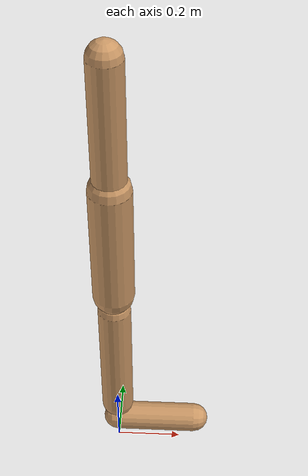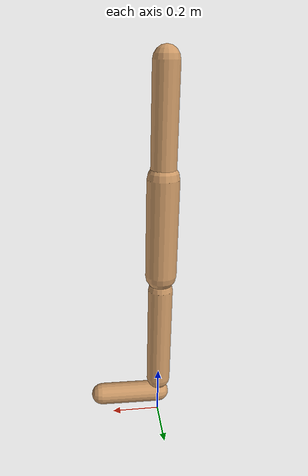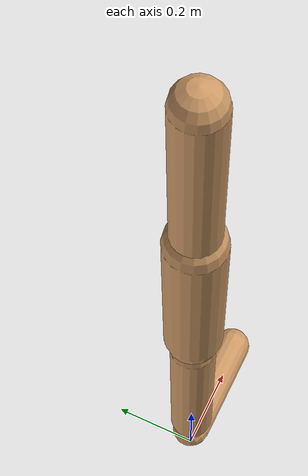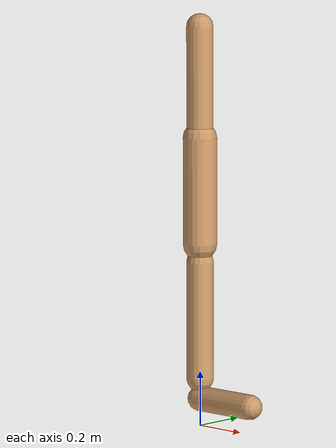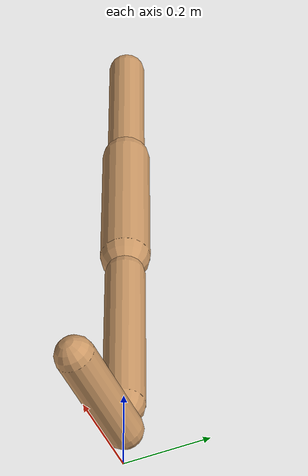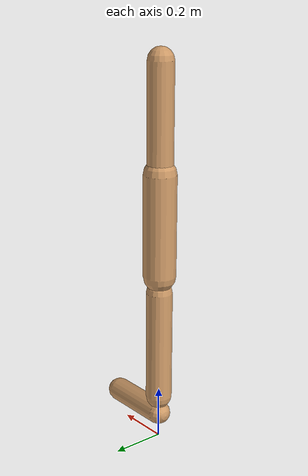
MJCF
<mujoco model="walker2d">
  <compiler angle="degree" coordinate="global" inertiafromgeom="true" />
  <default>
    <joint armature="0.01" damping=".1" limited="true" />
    <geom conaffinity="0" condim="3" contype="1" density="1000" friction="0.8 .1 .1" rgba="0.8 0.6 .4 1" />
  </default>
  <option integrator="RK4" timestep="0.002" />
  <worldbody>

    <body name="torso" pos="0 0 -0.1407101730280846">
      <joint armature="0" axis="1 0 0" damping="0" limited="false" name="ignorex" pos="0 0 0" stiffness="0" type="slide" />
      <joint armature="0" axis="0 0 1" damping="0" limited="false" name="ignorez" pos="0 0 0" ref="1.25" stiffness="0" type="slide" />
      <joint armature="0" axis="0 1 0" damping="0" limited="false" name="ignorey" pos="0 0 0" stiffness="0" type="hinge" />
      <geom fromto="0 0 1.45 0 0 1.05" name="torso_geom" size="0.048473413602160766" type="capsule" />
      <body name="thigh">
        <joint axis="0 -1 0" name="thigh_joint" pos="0 0 1.05" range="-150 0" type="hinge" />
        <geom fromto="0.0 0.0 1.05 0.0 0.0 0.6666521872238296" name="thigh_geom" size="0.06172441525191297" type="capsule" />
        <body name="leg" pos="0.0 0.0 0.0666521872238296">
          <joint axis="0 -1 0" name="leg_joint" pos="0 0 0.6" range="-150 0" type="hinge" />
          <geom fromto="0.0 0.0 0.6 0.0 0.0 0.17405798580425508" name="leg_geom" size="0.04937953220153037" type="capsule" />
          <body name="foot" pos="0.0 0.0 0.07405798580425507">
            <joint axis="0 -1 0" name="foot_joint" pos="0 0 0.1" range="-45 45" type="hinge" />
            <geom fromto="-0.0 0.0 0.09999999999999999 0.2461499404091681 0.0 0.09999999999999999" name="foot_geom" size="0.045213409400663034" type="capsule" />
          </body>
        </body>
      </body>

      <body name="thigh_left">
        <joint axis="0 -1 0" name="thigh_left_joint" pos="0 0 1.05" range="-150 0" type="hinge" />
        <geom fromto="0.0 0.0 1.05 0.0 0.0 0.6666521872238296" name="thigh_left_geom" rgba=".7 .3 .6 1" size="0.06172441525191297" type="capsule" />
        <body name="leg_left" pos="0.0 0.0 0.0666521872238296">
          <joint axis="0 -1 0" name="leg_left_joint" pos="0 0 0.6" range="-150 0" type="hinge" />
          <geom fromto="0.0 0.0 0.6 0.0 0.0 0.17405798580425508" name="leg_left_geom" rgba=".7 .3 .6 1" size="0.04937953220153037" type="capsule" />
          <body name="foot_left" pos="0.0 0.0 0.07405798580425507">
            <joint axis="0 -1 0" name="foot_left_joint" pos="0 0 0.1" range="-45 45" type="hinge" />
            <geom fromto="-0.0 0.0 0.09999999999999999 0.2461499404091681 0.0 0.09999999999999999" name="foot_left_geom" rgba=".7 .3 .6 1" size="0.045213409400663034" type="capsule" />
          </body>
        </body>
      </body>
    </body>
  </worldbody>
  <actuator>

    <motor ctrllimited="true" ctrlrange="-1.0 1.0" gear="100" joint="thigh_joint" />
    <motor ctrllimited="true" ctrlrange="-1.0 1.0" gear="100" joint="leg_joint" />
    <motor ctrllimited="true" ctrlrange="-1.0 1.0" gear="100" joint="foot_joint" />
    <motor ctrllimited="true" ctrlrange="-1.0 1.0" gear="100" joint="thigh_left_joint" />
    <motor ctrllimited="true" ctrlrange="-1.0 1.0" gear="100" joint="leg_left_joint" />
    <motor ctrllimited="true" ctrlrange="-1.0 1.0" gear="100" joint="foot_left_joint" />

  </actuator>
</mujoco>
